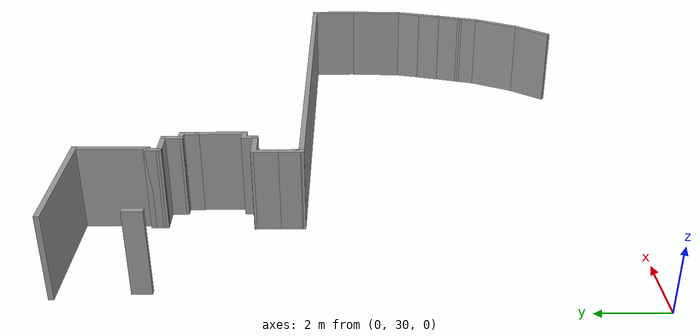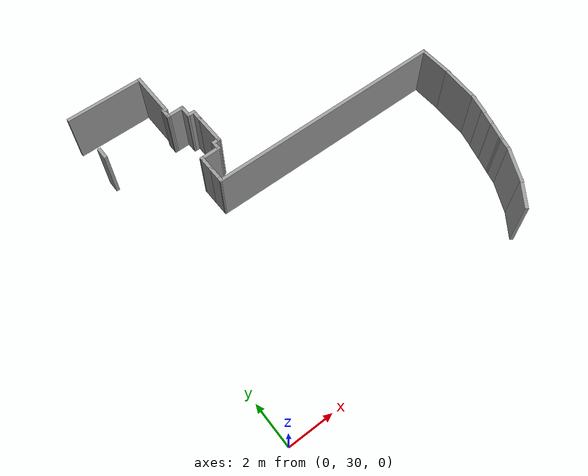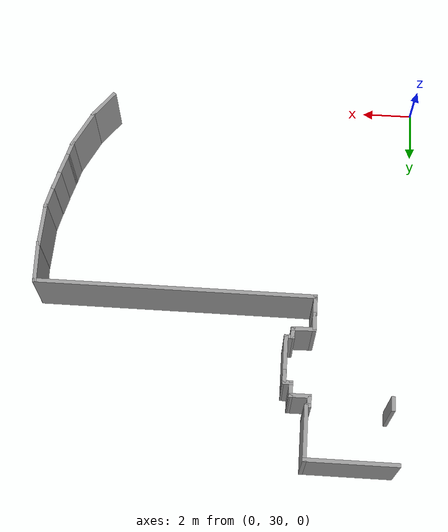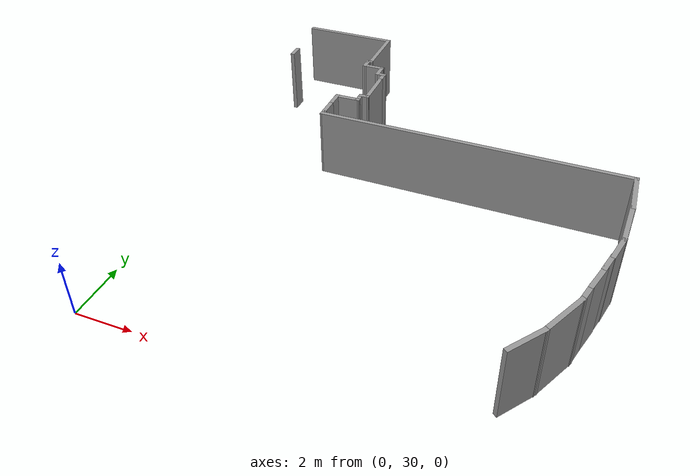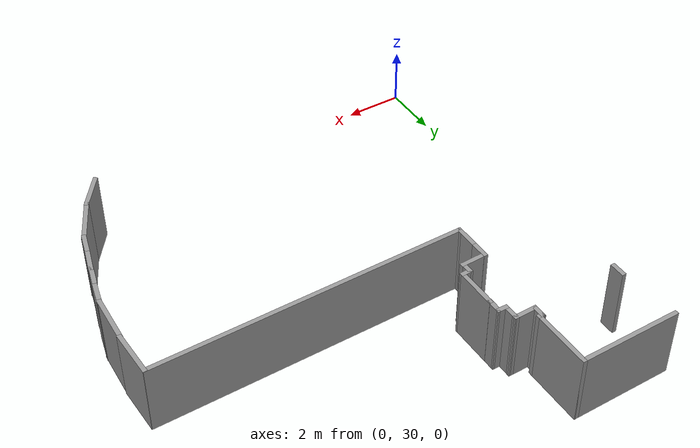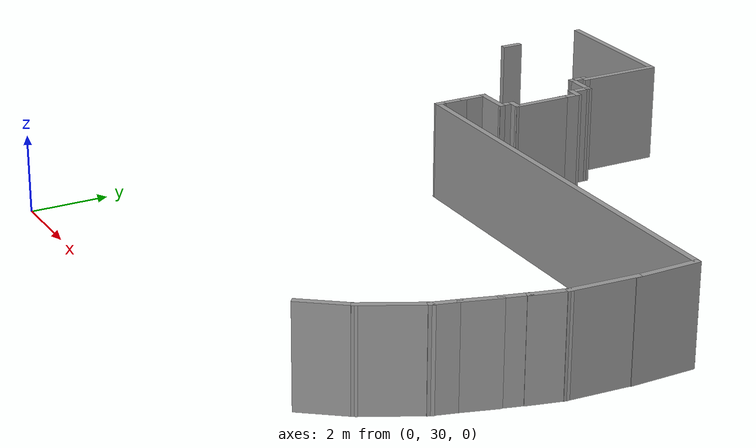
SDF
<sdf version="1.6">
 <model name="volen.world">
  <link name="Wall_100">
   <pose>12.7994 31.5829 0 0 0 -2.21664</pose>
   <visual name="Wall_100_Visual">
    <pose>0 0 1.25 0 -0 0</pose>
    <geometry><box><size>1.35577 0.15 2.5</size></box></geometry>
    <material>
     <script><uri>file://media/materials/scripts/gazebo.material</uri><name>Gazebo/Grey</name></script>
     <ambient>1 1 1 1</ambient>
     <diffuse>0.7 0.7 0.7 1</diffuse>
     <specular>0.01 0.01 0.01 1</specular>
     <emissive>0 0 0 1</emissive>
    </material>
   </visual>
   <collision name="Wall_100_Collision">
    <pose>0 0 1.25 0 -0 0</pose>
    <geometry><box><size>1.35577 0.15 2.5</size></box></geometry>
    <surface>
     <friction>
      <ode><mu>1</mu><mu2>1</mu2><fdir1>0 0 0</fdir1><slip1>0</slip1><slip2>0</slip2></ode>
      <torsional>
       <coefficient>1</coefficient>
       <patch_radius>0</patch_radius>
       <surface_radius>0</surface_radius>
       <use_patch_radius>1</use_patch_radius>
       <ode><slip>0</slip></ode>
      </torsional>
     </friction>
     <bounce><restitution_coefficient>0</restitution_coefficient><threshold>1e+06</threshold></bounce>
     <contact>
      <collide_without_contact>0</collide_without_contact>
      <collide_without_contact_bitmask>1</collide_without_contact_bitmask>
      <collide_bitmask>1</collide_bitmask>
      <ode>
       <soft_cfm>0</soft_cfm>
       <soft_erp>0.2</soft_erp>
       <kp>1e+13</kp>
       <kd>1</kd>
       <max_vel>0.01</max_vel>
       <min_depth>0</min_depth>
      </ode>
      <bullet>
       <split_impulse>1</split_impulse>
       <split_impulse_penetration_threshold>-0.01</split_impulse_penetration_threshold>
       <soft_cfm>0</soft_cfm>
       <soft_erp>0.2</soft_erp>
       <kp>1e+13</kp>
       <kd>1</kd>
      </bullet>
     </contact>
    </surface>
   </collision>
  </link>
  <link name="Wall_377">
   <pose>0.90923 43.3394 0 0 -0 1.5708</pose>
   <visual name="Wall_377_Visual">
    <pose>0 0 1.25 0 -0 0</pose>
    <geometry><box><size>0.55 0.15 2.5</size></box></geometry>
    <material>
     <script><uri>file://media/materials/scripts/gazebo.material</uri><name>Gazebo/Grey</name></script>
     <ambient>1 1 1 1</ambient>
     <diffuse>0.7 0.7 0.7 1</diffuse>
     <specular>0.01 0.01 0.01 1</specular>
     <emissive>0 0 0 1</emissive>
    </material>
   </visual>
   <collision name="Wall_377_Collision">
    <pose>0 0 1.25 0 -0 0</pose>
    <geometry><box><size>0.55 0.15 2.5</size></box></geometry>
    <surface>
     <friction>
      <ode><mu>1</mu><mu2>1</mu2><fdir1>0 0 0</fdir1><slip1>0</slip1><slip2>0</slip2></ode>
      <torsional>
       <coefficient>1</coefficient>
       <patch_radius>0</patch_radius>
       <surface_radius>0</surface_radius>
       <use_patch_radius>1</use_patch_radius>
       <ode><slip>0</slip></ode>
      </torsional>
     </friction>
     <bounce><restitution_coefficient>0</restitution_coefficient><threshold>1e+06</threshold></bounce>
     <contact>
      <collide_without_contact>0</collide_without_contact>
      <collide_without_contact_bitmask>1</collide_without_contact_bitmask>
      <collide_bitmask>1</collide_bitmask>
      <ode>
       <soft_cfm>0</soft_cfm>
       <soft_erp>0.2</soft_erp>
       <kp>1e+13</kp>
       <kd>1</kd>
       <max_vel>0.01</max_vel>
       <min_depth>0</min_depth>
      </ode>
      <bullet>
       <split_impulse>1</split_impulse>
       <split_impulse_penetration_threshold>-0.01</split_impulse_penetration_threshold>
       <soft_cfm>0</soft_cfm>
       <soft_erp>0.2</soft_erp>
       <kp>1e+13</kp>
       <kd>1</kd>
      </bullet>
     </contact>
    </surface>
   </collision>
  </link>
  <link name="Wall_387">
   <pose>14.6739 38.5776 0 0 0 -1.54557</pose>
   <visual name="Wall_387_Visual">
    <pose>0 0 1.25 0 -0 0</pose>
    <geometry><box><size>1.65654 0.15 2.5</size></box></geometry>
    <material>
     <script><uri>file://media/materials/scripts/gazebo.material</uri><name>Gazebo/Grey</name></script>
     <ambient>1 1 1 1</ambient>
     <diffuse>0.7 0.7 0.7 1</diffuse>
     <specular>0.01 0.01 0.01 1</specular>
     <emissive>0 0 0 1</emissive>
    </material>
   </visual>
   <collision name="Wall_387_Collision">
    <pose>0 0 1.25 0 -0 0</pose>
    <geometry><box><size>1.65654 0.15 2.5</size></box></geometry>
    <surface>
     <friction>
      <ode><mu>1</mu><mu2>1</mu2><fdir1>0 0 0</fdir1><slip1>0</slip1><slip2>0</slip2></ode>
      <torsional>
       <coefficient>1</coefficient>
       <patch_radius>0</patch_radius>
       <surface_radius>0</surface_radius>
       <use_patch_radius>1</use_patch_radius>
       <ode><slip>0</slip></ode>
      </torsional>
     </friction>
     <bounce><restitution_coefficient>0</restitution_coefficient><threshold>1e+06</threshold></bounce>
     <contact>
      <collide_without_contact>0</collide_without_contact>
      <collide_without_contact_bitmask>1</collide_without_contact_bitmask>
      <collide_bitmask>1</collide_bitmask>
      <ode>
       <soft_cfm>0</soft_cfm>
       <soft_erp>0.2</soft_erp>
       <kp>1e+13</kp>
       <kd>1</kd>
       <max_vel>0.01</max_vel>
       <min_depth>0</min_depth>
      </ode>
      <bullet>
       <split_impulse>1</split_impulse>
       <split_impulse_penetration_threshold>-0.01</split_impulse_penetration_threshold>
       <soft_cfm>0</soft_cfm>
       <soft_erp>0.2</soft_erp>
       <kp>1e+13</kp>
       <kd>1</kd>
      </bullet>
     </contact>
    </surface>
   </collision>
  </link>
  <link name="Wall_39">
   <pose>2.39544 45.5992 0 0 -0 0</pose>
   <visual name="Wall_39_Visual">
    <pose>0 0 1.25 0 -0 0</pose>
    <geometry><box><size>3.55 0.15 2.5</size></box></geometry>
    <material>
     <script><uri>file://media/materials/scripts/gazebo.material</uri><name>Gazebo/Grey</name></script>
     <ambient>1 1 1 1</ambient>
     <diffuse>0.7 0.7 0.7 1</diffuse>
     <specular>0.01 0.01 0.01 1</specular>
     <emissive>0 0 0 1</emissive>
    </material>
   </visual>
   <collision name="Wall_39_Collision">
    <pose>0 0 1.25 0 -0 0</pose>
    <geometry><box><size>3.55 0.15 2.5</size></box></geometry>
    <surface>
     <friction>
      <ode><mu>1</mu><mu2>1</mu2><fdir1>0 0 0</fdir1><slip1>0</slip1><slip2>0</slip2></ode>
      <torsional>
       <coefficient>1</coefficient>
       <patch_radius>0</patch_radius>
       <surface_radius>0</surface_radius>
       <use_patch_radius>1</use_patch_radius>
       <ode><slip>0</slip></ode>
      </torsional>
     </friction>
     <bounce><restitution_coefficient>0</restitution_coefficient><threshold>1e+06</threshold></bounce>
     <contact>
      <collide_without_contact>0</collide_without_contact>
      <collide_without_contact_bitmask>1</collide_without_contact_bitmask>
      <collide_bitmask>1</collide_bitmask>
      <ode>
       <soft_cfm>0</soft_cfm>
       <soft_erp>0.2</soft_erp>
       <kp>1e+13</kp>
       <kd>1</kd>
       <max_vel>0.01</max_vel>
       <min_depth>0</min_depth>
      </ode>
      <bullet>
       <split_impulse>1</split_impulse>
       <split_impulse_penetration_threshold>-0.01</split_impulse_penetration_threshold>
       <soft_cfm>0</soft_cfm>
       <soft_erp>0.2</soft_erp>
       <kp>1e+13</kp>
       <kd>1</kd>
      </bullet>
     </contact>
    </surface>
   </collision>
  </link>
  <link name="Wall_41">
   <pose>4.09544 44.5982 0 0 0 -1.5708</pose>
   <visual name="Wall_41_Visual">
    <pose>0 0 1.25 0 -0 0</pose>
    <geometry><box><size>2.152 0.15 2.5</size></box></geometry>
    <material>
     <script><uri>file://media/materials/scripts/gazebo.material</uri><name>Gazebo/Grey</name></script>
     <ambient>1 1 1 1</ambient>
     <diffuse>0.7 0.7 0.7 1</diffuse>
     <specular>0.01 0.01 0.01 1</specular>
     <emissive>0 0 0 1</emissive>
    </material>
   </visual>
   <collision name="Wall_41_Collision">
    <pose>0 0 1.25 0 -0 0</pose>
    <geometry><box><size>2.152 0.15 2.5</size></box></geometry>
    <surface>
     <friction>
      <ode><mu>1</mu><mu2>1</mu2><fdir1>0 0 0</fdir1><slip1>0</slip1><slip2>0</slip2></ode>
      <torsional>
       <coefficient>1</coefficient>
       <patch_radius>0</patch_radius>
       <surface_radius>0</surface_radius>
       <use_patch_radius>1</use_patch_radius>
       <ode><slip>0</slip></ode>
      </torsional>
     </friction>
     <bounce><restitution_coefficient>0</restitution_coefficient><threshold>1e+06</threshold></bounce>
     <contact>
      <collide_without_contact>0</collide_without_contact>
      <collide_without_contact_bitmask>1</collide_without_contact_bitmask>
      <collide_bitmask>1</collide_bitmask>
      <ode>
       <soft_cfm>0</soft_cfm>
       <soft_erp>0.2</soft_erp>
       <kp>1e+13</kp>
       <kd>1</kd>
       <max_vel>0.01</max_vel>
       <min_depth>0</min_depth>
      </ode>
      <bullet>
       <split_impulse>1</split_impulse>
       <split_impulse_penetration_threshold>-0.01</split_impulse_penetration_threshold>
       <soft_cfm>0</soft_cfm>
       <soft_erp>0.2</soft_erp>
       <kp>1e+13</kp>
       <kd>1</kd>
      </bullet>
     </contact>
    </surface>
   </collision>
  </link>
  <link name="Wall_48">
   <pose>4.04544 43.5972 0 0 -0 3.14159</pose>
   <visual name="Wall_48_Visual">
    <pose>0 0 1.25 0 -0 0</pose>
    <geometry><box><size>0.25 0.15 2.5</size></box></geometry>
    <material>
     <script><uri>file://media/materials/scripts/gazebo.material</uri><name>Gazebo/Grey</name></script>
     <ambient>1 1 1 1</ambient>
     <diffuse>0.7 0.7 0.7 1</diffuse>
     <specular>0.01 0.01 0.01 1</specular>
     <emissive>0 0 0 1</emissive>
    </material>
   </visual>
   <collision name="Wall_48_Collision">
    <pose>0 0 1.25 0 -0 0</pose>
    <geometry><box><size>0.25 0.15 2.5</size></box></geometry>
    <surface>
     <friction>
      <ode><mu>1</mu><mu2>1</mu2><fdir1>0 0 0</fdir1><slip1>0</slip1><slip2>0</slip2></ode>
      <torsional>
       <coefficient>1</coefficient>
       <patch_radius>0</patch_radius>
       <surface_radius>0</surface_radius>
       <use_patch_radius>1</use_patch_radius>
       <ode><slip>0</slip></ode>
      </torsional>
     </friction>
     <bounce><restitution_coefficient>0</restitution_coefficient><threshold>1e+06</threshold></bounce>
     <contact>
      <collide_without_contact>0</collide_without_contact>
      <collide_without_contact_bitmask>1</collide_without_contact_bitmask>
      <collide_bitmask>1</collide_bitmask>
      <ode>
       <soft_cfm>0</soft_cfm>
       <soft_erp>0.2</soft_erp>
       <kp>1e+13</kp>
       <kd>1</kd>
       <max_vel>0.01</max_vel>
       <min_depth>0</min_depth>
      </ode>
      <bullet>
       <split_impulse>1</split_impulse>
       <split_impulse_penetration_threshold>-0.01</split_impulse_penetration_threshold>
       <soft_cfm>0</soft_cfm>
       <soft_erp>0.2</soft_erp>
       <kp>1e+13</kp>
       <kd>1</kd>
      </bullet>
     </contact>
    </surface>
   </collision>
  </link>
  <link name="Wall_49">
   <pose>3.99544 43.4222 0 0 0 -1.5708</pose>
   <visual name="Wall_49_Visual">
    <pose>0 0 1.25 0 -0 0</pose>
    <geometry><box><size>0.5 0.15 2.5</size></box></geometry>
    <material>
     <script><uri>file://media/materials/scripts/gazebo.material</uri><name>Gazebo/Grey</name></script>
     <ambient>1 1 1 1</ambient>
     <diffuse>0.7 0.7 0.7 1</diffuse>
     <specular>0.01 0.01 0.01 1</specular>
     <emissive>0 0 0 1</emissive>
    </material>
   </visual>
   <collision name="Wall_49_Collision">
    <pose>0 0 1.25 0 -0 0</pose>
    <geometry><box><size>0.5 0.15 2.5</size></box></geometry>
    <surface>
     <friction>
      <ode><mu>1</mu><mu2>1</mu2><fdir1>0 0 0</fdir1><slip1>0</slip1><slip2>0</slip2></ode>
      <torsional>
       <coefficient>1</coefficient>
       <patch_radius>0</patch_radius>
       <surface_radius>0</surface_radius>
       <use_patch_radius>1</use_patch_radius>
       <ode><slip>0</slip></ode>
      </torsional>
     </friction>
     <bounce><restitution_coefficient>0</restitution_coefficient><threshold>1e+06</threshold></bounce>
     <contact>
      <collide_without_contact>0</collide_without_contact>
      <collide_without_contact_bitmask>1</collide_without_contact_bitmask>
      <collide_bitmask>1</collide_bitmask>
      <ode>
       <soft_cfm>0</soft_cfm>
       <soft_erp>0.2</soft_erp>
       <kp>1e+13</kp>
       <kd>1</kd>
       <max_vel>0.01</max_vel>
       <min_depth>0</min_depth>
      </ode>
      <bullet>
       <split_impulse>1</split_impulse>
       <split_impulse_penetration_threshold>-0.01</split_impulse_penetration_threshold>
       <soft_cfm>0</soft_cfm>
       <soft_erp>0.2</soft_erp>
       <kp>1e+13</kp>
       <kd>1</kd>
      </bullet>
     </contact>
    </surface>
   </collision>
  </link>
  <link name="Wall_50">
   <pose>4.34484 43.2498 0 0 -0 0.00739</pose>
   <visual name="Wall_50_Visual">
    <pose>0 0 1.25 0 -0 0</pose>
    <geometry><box><size>0.848806 0.15 2.5</size></box></geometry>
    <material>
     <script><uri>file://media/materials/scripts/gazebo.material</uri><name>Gazebo/Grey</name></script>
     <ambient>1 1 1 1</ambient>
     <diffuse>0.7 0.7 0.7 1</diffuse>
     <specular>0.01 0.01 0.01 1</specular>
     <emissive>0 0 0 1</emissive>
    </material>
   </visual>
   <collision name="Wall_50_Collision">
    <pose>0 0 1.25 0 -0 0</pose>
    <geometry><box><size>0.848806 0.15 2.5</size></box></geometry>
    <surface>
     <friction>
      <ode><mu>1</mu><mu2>1</mu2><fdir1>0 0 0</fdir1><slip1>0</slip1><slip2>0</slip2></ode>
      <torsional>
       <coefficient>1</coefficient>
       <patch_radius>0</patch_radius>
       <surface_radius>0</surface_radius>
       <use_patch_radius>1</use_patch_radius>
       <ode><slip>0</slip></ode>
      </torsional>
     </friction>
     <bounce><restitution_coefficient>0</restitution_coefficient><threshold>1e+06</threshold></bounce>
     <contact>
      <collide_without_contact>0</collide_without_contact>
      <collide_without_contact_bitmask>1</collide_without_contact_bitmask>
      <collide_bitmask>1</collide_bitmask>
      <ode>
       <soft_cfm>0</soft_cfm>
       <soft_erp>0.2</soft_erp>
       <kp>1e+13</kp>
       <kd>1</kd>
       <max_vel>0.01</max_vel>
       <min_depth>0</min_depth>
      </ode>
      <bullet>
       <split_impulse>1</split_impulse>
       <split_impulse_penetration_threshold>-0.01</split_impulse_penetration_threshold>
       <soft_cfm>0</soft_cfm>
       <soft_erp>0.2</soft_erp>
       <kp>1e+13</kp>
       <kd>1</kd>
      </bullet>
     </contact>
    </surface>
   </collision>
  </link>
  <link name="Wall_68">
   <pose>4.69423 43.0154 0 0 0 -1.5708</pose>
   <visual name="Wall_68_Visual">
    <pose>0 0 1.25 0 -0 0</pose>
    <geometry><box><size>0.624347 0.15 2.5</size></box></geometry>
    <material>
     <script><uri>file://media/materials/scripts/gazebo.material</uri><name>Gazebo/Grey</name></script>
     <ambient>1 1 1 1</ambient>
     <diffuse>0.7 0.7 0.7 1</diffuse>
     <specular>0.01 0.01 0.01 1</specular>
     <emissive>0 0 0 1</emissive>
    </material>
   </visual>
   <collision name="Wall_68_Collision">
    <pose>0 0 1.25 0 -0 0</pose>
    <geometry><box><size>0.624347 0.15 2.5</size></box></geometry>
    <surface>
     <friction>
      <ode><mu>1</mu><mu2>1</mu2><fdir1>0 0 0</fdir1><slip1>0</slip1><slip2>0</slip2></ode>
      <torsional>
       <coefficient>1</coefficient>
       <patch_radius>0</patch_radius>
       <surface_radius>0</surface_radius>
       <use_patch_radius>1</use_patch_radius>
       <ode><slip>0</slip></ode>
      </torsional>
     </friction>
     <bounce><restitution_coefficient>0</restitution_coefficient><threshold>1e+06</threshold></bounce>
     <contact>
      <collide_without_contact>0</collide_without_contact>
      <collide_without_contact_bitmask>1</collide_without_contact_bitmask>
      <collide_bitmask>1</collide_bitmask>
      <ode>
       <soft_cfm>0</soft_cfm>
       <soft_erp>0.2</soft_erp>
       <kp>1e+13</kp>
       <kd>1</kd>
       <max_vel>0.01</max_vel>
       <min_depth>0</min_depth>
      </ode>
      <bullet>
       <split_impulse>1</split_impulse>
       <split_impulse_penetration_threshold>-0.01</split_impulse_penetration_threshold>
       <soft_cfm>0</soft_cfm>
       <soft_erp>0.2</soft_erp>
       <kp>1e+13</kp>
       <kd>1</kd>
      </bullet>
     </contact>
    </surface>
   </collision>
  </link>
  <link name="Wall_69">
   <pose>4.82273 42.7754 0 0 0 -0.023342</pose>
   <visual name="Wall_69_Visual">
    <pose>0 0 1.25 0 -0 0</pose>
    <geometry><box><size>0.40707 0.15 2.5</size></box></geometry>
    <material>
     <script><uri>file://media/materials/scripts/gazebo.material</uri><name>Gazebo/Grey</name></script>
     <ambient>1 1 1 1</ambient>
     <diffuse>0.7 0.7 0.7 1</diffuse>
     <specular>0.01 0.01 0.01 1</specular>
     <emissive>0 0 0 1</emissive>
    </material>
   </visual>
   <collision name="Wall_69_Collision">
    <pose>0 0 1.25 0 -0 0</pose>
    <geometry><box><size>0.40707 0.15 2.5</size></box></geometry>
    <surface>
     <friction>
      <ode><mu>1</mu><mu2>1</mu2><fdir1>0 0 0</fdir1><slip1>0</slip1><slip2>0</slip2></ode>
      <torsional>
       <coefficient>1</coefficient>
       <patch_radius>0</patch_radius>
       <surface_radius>0</surface_radius>
       <use_patch_radius>1</use_patch_radius>
       <ode><slip>0</slip></ode>
      </torsional>
     </friction>
     <bounce><restitution_coefficient>0</restitution_coefficient><threshold>1e+06</threshold></bounce>
     <contact>
      <collide_without_contact>0</collide_without_contact>
      <collide_without_contact_bitmask>1</collide_without_contact_bitmask>
      <collide_bitmask>1</collide_bitmask>
      <ode>
       <soft_cfm>0</soft_cfm>
       <soft_erp>0.2</soft_erp>
       <kp>1e+13</kp>
       <kd>1</kd>
       <max_vel>0.01</max_vel>
       <min_depth>0</min_depth>
      </ode>
      <bullet>
       <split_impulse>1</split_impulse>
       <split_impulse_penetration_threshold>-0.01</split_impulse_penetration_threshold>
       <soft_cfm>0</soft_cfm>
       <soft_erp>0.2</soft_erp>
       <kp>1e+13</kp>
       <kd>1</kd>
      </bullet>
     </contact>
    </surface>
   </collision>
  </link>
  <link name="Wall_70">
   <pose>4.94834 42.563 0 0 0 -1.58462</pose>
   <visual name="Wall_70_Visual">
    <pose>0 0 1.25 0 -0 0</pose>
    <geometry><box><size>0.568673 0.15 2.5</size></box></geometry>
    <material>
     <script><uri>file://media/materials/scripts/gazebo.material</uri><name>Gazebo/Grey</name></script>
     <ambient>1 1 1 1</ambient>
     <diffuse>0.7 0.7 0.7 1</diffuse>
     <specular>0.01 0.01 0.01 1</specular>
     <emissive>0 0 0 1</emissive>
    </material>
   </visual>
   <collision name="Wall_70_Collision">
    <pose>0 0 1.25 0 -0 0</pose>
    <geometry><box><size>0.568673 0.15 2.5</size></box></geometry>
    <surface>
     <friction>
      <ode><mu>1</mu><mu2>1</mu2><fdir1>0 0 0</fdir1><slip1>0</slip1><slip2>0</slip2></ode>
      <torsional>
       <coefficient>1</coefficient>
       <patch_radius>0</patch_radius>
       <surface_radius>0</surface_radius>
       <use_patch_radius>1</use_patch_radius>
       <ode><slip>0</slip></ode>
      </torsional>
     </friction>
     <bounce><restitution_coefficient>0</restitution_coefficient><threshold>1e+06</threshold></bounce>
     <contact>
      <collide_without_contact>0</collide_without_contact>
      <collide_without_contact_bitmask>1</collide_without_contact_bitmask>
      <collide_bitmask>1</collide_bitmask>
      <ode>
       <soft_cfm>0</soft_cfm>
       <soft_erp>0.2</soft_erp>
       <kp>1e+13</kp>
       <kd>1</kd>
       <max_vel>0.01</max_vel>
       <min_depth>0</min_depth>
      </ode>
      <bullet>
       <split_impulse>1</split_impulse>
       <split_impulse_penetration_threshold>-0.01</split_impulse_penetration_threshold>
       <soft_cfm>0</soft_cfm>
       <soft_erp>0.2</soft_erp>
       <kp>1e+13</kp>
       <kd>1</kd>
      </bullet>
     </contact>
    </surface>
   </collision>
  </link>
  <link name="Wall_72">
   <pose>4.95392 41.6787 0 0 0 -1.56661</pose>
   <visual name="Wall_72_Visual">
    <pose>0 0 1.25 0 -0 0</pose>
    <geometry><box><size>1.50005 0.15 2.5</size></box></geometry>
    <material>
     <script><uri>file://media/materials/scripts/gazebo.material</uri><name>Gazebo/Grey</name></script>
     <ambient>1 1 1 1</ambient>
     <diffuse>0.7 0.7 0.7 1</diffuse>
     <specular>0.01 0.01 0.01 1</specular>
     <emissive>0 0 0 1</emissive>
    </material>
   </visual>
   <collision name="Wall_72_Collision">
    <pose>0 0 1.25 0 -0 0</pose>
    <geometry><box><size>1.50005 0.15 2.5</size></box></geometry>
    <surface>
     <friction>
      <ode><mu>1</mu><mu2>1</mu2><fdir1>0 0 0</fdir1><slip1>0</slip1><slip2>0</slip2></ode>
      <torsional>
       <coefficient>1</coefficient>
       <patch_radius>0</patch_radius>
       <surface_radius>0</surface_radius>
       <use_patch_radius>1</use_patch_radius>
       <ode><slip>0</slip></ode>
      </torsional>
     </friction>
     <bounce><restitution_coefficient>0</restitution_coefficient><threshold>1e+06</threshold></bounce>
     <contact>
      <collide_without_contact>0</collide_without_contact>
      <collide_without_contact_bitmask>1</collide_without_contact_bitmask>
      <collide_bitmask>1</collide_bitmask>
      <ode>
       <soft_cfm>0</soft_cfm>
       <soft_erp>0.2</soft_erp>
       <kp>1e+13</kp>
       <kd>1</kd>
       <max_vel>0.01</max_vel>
       <min_depth>0</min_depth>
      </ode>
      <bullet>
       <split_impulse>1</split_impulse>
       <split_impulse_penetration_threshold>-0.01</split_impulse_penetration_threshold>
       <soft_cfm>0</soft_cfm>
       <soft_erp>0.2</soft_erp>
       <kp>1e+13</kp>
       <kd>1</kd>
      </bullet>
     </contact>
    </surface>
   </collision>
  </link>
  <link name="Wall_76">
   <pose>4.83526 41.0008 0 0 0 -3.11775</pose>
   <visual name="Wall_76_Visual">
    <pose>0 0 1.25 0 -0 0</pose>
    <geometry><box><size>0.393057 0.15 2.5</size></box></geometry>
    <material>
     <script><uri>file://media/materials/scripts/gazebo.material</uri><name>Gazebo/Grey</name></script>
     <ambient>1 1 1 1</ambient>
     <diffuse>0.7 0.7 0.7 1</diffuse>
     <specular>0.01 0.01 0.01 1</specular>
     <emissive>0 0 0 1</emissive>
    </material>
   </visual>
   <collision name="Wall_76_Collision">
    <pose>0 0 1.25 0 -0 0</pose>
    <geometry><box><size>0.393057 0.15 2.5</size></box></geometry>
    <surface>
     <friction>
      <ode><mu>1</mu><mu2>1</mu2><fdir1>0 0 0</fdir1><slip1>0</slip1><slip2>0</slip2></ode>
      <torsional>
       <coefficient>1</coefficient>
       <patch_radius>0</patch_radius>
       <surface_radius>0</surface_radius>
       <use_patch_radius>1</use_patch_radius>
       <ode><slip>0</slip></ode>
      </torsional>
     </friction>
     <bounce><restitution_coefficient>0</restitution_coefficient><threshold>1e+06</threshold></bounce>
     <contact>
      <collide_without_contact>0</collide_without_contact>
      <collide_without_contact_bitmask>1</collide_without_contact_bitmask>
      <collide_bitmask>1</collide_bitmask>
      <ode>
       <soft_cfm>0</soft_cfm>
       <soft_erp>0.2</soft_erp>
       <kp>1e+13</kp>
       <kd>1</kd>
       <max_vel>0.01</max_vel>
       <min_depth>0</min_depth>
      </ode>
      <bullet>
       <split_impulse>1</split_impulse>
       <split_impulse_penetration_threshold>-0.01</split_impulse_penetration_threshold>
       <soft_cfm>0</soft_cfm>
       <soft_erp>0.2</soft_erp>
       <kp>1e+13</kp>
       <kd>1</kd>
      </bullet>
     </contact>
    </surface>
   </collision>
  </link>
  <link name="Wall_77">
   <pose>4.70811 40.8369 0 0 0 -1.5708</pose>
   <visual name="Wall_77_Visual">
    <pose>0 0 1.25 0 -0 0</pose>
    <geometry><box><size>0.472 0.15 2.5</size></box></geometry>
    <material>
     <script><uri>file://media/materials/scripts/gazebo.material</uri><name>Gazebo/Grey</name></script>
     <ambient>1 1 1 1</ambient>
     <diffuse>0.7 0.7 0.7 1</diffuse>
     <specular>0.01 0.01 0.01 1</specular>
     <emissive>0 0 0 1</emissive>
    </material>
   </visual>
   <collision name="Wall_77_Collision">
    <pose>0 0 1.25 0 -0 0</pose>
    <geometry><box><size>0.472 0.15 2.5</size></box></geometry>
    <surface>
     <friction>
      <ode><mu>1</mu><mu2>1</mu2><fdir1>0 0 0</fdir1><slip1>0</slip1><slip2>0</slip2></ode>
      <torsional>
       <coefficient>1</coefficient>
       <patch_radius>0</patch_radius>
       <surface_radius>0</surface_radius>
       <use_patch_radius>1</use_patch_radius>
       <ode><slip>0</slip></ode>
      </torsional>
     </friction>
     <bounce><restitution_coefficient>0</restitution_coefficient><threshold>1e+06</threshold></bounce>
     <contact>
      <collide_without_contact>0</collide_without_contact>
      <collide_without_contact_bitmask>1</collide_without_contact_bitmask>
      <collide_bitmask>1</collide_bitmask>
      <ode>
       <soft_cfm>0</soft_cfm>
       <soft_erp>0.2</soft_erp>
       <kp>1e+13</kp>
       <kd>1</kd>
       <max_vel>0.01</max_vel>
       <min_depth>0</min_depth>
      </ode>
      <bullet>
       <split_impulse>1</split_impulse>
       <split_impulse_penetration_threshold>-0.01</split_impulse_penetration_threshold>
       <soft_cfm>0</soft_cfm>
       <soft_erp>0.2</soft_erp>
       <kp>1e+13</kp>
       <kd>1</kd>
      </bullet>
     </contact>
    </surface>
   </collision>
  </link>
  <link name="Wall_78">
   <pose>4.3105 40.6675 0 0 0 -3.12062</pose>
   <visual name="Wall_78_Visual">
    <pose>0 0 1.25 0 -0 0</pose>
    <geometry><box><size>0.956709 0.15 2.5</size></box></geometry>
    <material>
     <script><uri>file://media/materials/scripts/gazebo.material</uri><name>Gazebo/Grey</name></script>
     <ambient>1 1 1 1</ambient>
     <diffuse>0.7 0.7 0.7 1</diffuse>
     <specular>0.01 0.01 0.01 1</specular>
     <emissive>0 0 0 1</emissive>
    </material>
   </visual>
   <collision name="Wall_78_Collision">
    <pose>0 0 1.25 0 -0 0</pose>
    <geometry><box><size>0.956709 0.15 2.5</size></box></geometry>
    <surface>
     <friction>
      <ode><mu>1</mu><mu2>1</mu2><fdir1>0 0 0</fdir1><slip1>0</slip1><slip2>0</slip2></ode>
      <torsional>
       <coefficient>1</coefficient>
       <patch_radius>0</patch_radius>
       <surface_radius>0</surface_radius>
       <use_patch_radius>1</use_patch_radius>
       <ode><slip>0</slip></ode>
      </torsional>
     </friction>
     <bounce><restitution_coefficient>0</restitution_coefficient><threshold>1e+06</threshold></bounce>
     <contact>
      <collide_without_contact>0</collide_without_contact>
      <collide_without_contact_bitmask>1</collide_without_contact_bitmask>
      <collide_bitmask>1</collide_bitmask>
      <ode>
       <soft_cfm>0</soft_cfm>
       <soft_erp>0.2</soft_erp>
       <kp>1e+13</kp>
       <kd>1</kd>
       <max_vel>0.01</max_vel>
       <min_depth>0</min_depth>
      </ode>
      <bullet>
       <split_impulse>1</split_impulse>
       <split_impulse_penetration_threshold>-0.01</split_impulse_penetration_threshold>
       <soft_cfm>0</soft_cfm>
       <soft_erp>0.2</soft_erp>
       <kp>1e+13</kp>
       <kd>1</kd>
      </bullet>
     </contact>
    </surface>
   </collision>
  </link>
  <link name="Wall_80">
   <pose>3.90723 40.359 0 0 0 -1.5708</pose>
   <visual name="Wall_80_Visual">
    <pose>0 0 1.25 0 -0 0</pose>
    <geometry><box><size>0.761306 0.15 2.5</size></box></geometry>
    <material>
     <script><uri>file://media/materials/scripts/gazebo.material</uri><name>Gazebo/Grey</name></script>
     <ambient>1 1 1 1</ambient>
     <diffuse>0.7 0.7 0.7 1</diffuse>
     <specular>0.01 0.01 0.01 1</specular>
     <emissive>0 0 0 1</emissive>
    </material>
   </visual>
   <collision name="Wall_80_Collision">
    <pose>0 0 1.25 0 -0 0</pose>
    <geometry><box><size>0.761306 0.15 2.5</size></box></geometry>
    <surface>
     <friction>
      <ode><mu>1</mu><mu2>1</mu2><fdir1>0 0 0</fdir1><slip1>0</slip1><slip2>0</slip2></ode>
      <torsional>
       <coefficient>1</coefficient>
       <patch_radius>0</patch_radius>
       <surface_radius>0</surface_radius>
       <use_patch_radius>1</use_patch_radius>
       <ode><slip>0</slip></ode>
      </torsional>
     </friction>
     <bounce><restitution_coefficient>0</restitution_coefficient><threshold>1e+06</threshold></bounce>
     <contact>
      <collide_without_contact>0</collide_without_contact>
      <collide_without_contact_bitmask>1</collide_without_contact_bitmask>
      <collide_bitmask>1</collide_bitmask>
      <ode>
       <soft_cfm>0</soft_cfm>
       <soft_erp>0.2</soft_erp>
       <kp>1e+13</kp>
       <kd>1</kd>
       <max_vel>0.01</max_vel>
       <min_depth>0</min_depth>
      </ode>
      <bullet>
       <split_impulse>1</split_impulse>
       <split_impulse_penetration_threshold>-0.01</split_impulse_penetration_threshold>
       <soft_cfm>0</soft_cfm>
       <soft_erp>0.2</soft_erp>
       <kp>1e+13</kp>
       <kd>1</kd>
      </bullet>
     </contact>
    </surface>
   </collision>
  </link>
  <link name="Wall_82">
   <pose>3.90723 39.7534 0 0 0 -1.5708</pose>
   <visual name="Wall_82_Visual">
    <pose>0 0 1.25 0 -0 0</pose>
    <geometry><box><size>0.75 0.15 2.5</size></box></geometry>
    <material>
     <script><uri>file://media/materials/scripts/gazebo.material</uri><name>Gazebo/Grey</name></script>
     <ambient>1 1 1 1</ambient>
     <diffuse>0.7 0.7 0.7 1</diffuse>
     <specular>0.01 0.01 0.01 1</specular>
     <emissive>0 0 0 1</emissive>
    </material>
   </visual>
   <collision name="Wall_82_Collision">
    <pose>0 0 1.25 0 -0 0</pose>
    <geometry><box><size>0.75 0.15 2.5</size></box></geometry>
    <surface>
     <friction>
      <ode><mu>1</mu><mu2>1</mu2><fdir1>0 0 0</fdir1><slip1>0</slip1><slip2>0</slip2></ode>
      <torsional>
       <coefficient>1</coefficient>
       <patch_radius>0</patch_radius>
       <surface_radius>0</surface_radius>
       <use_patch_radius>1</use_patch_radius>
       <ode><slip>0</slip></ode>
      </torsional>
     </friction>
     <bounce><restitution_coefficient>0</restitution_coefficient><threshold>1e+06</threshold></bounce>
     <contact>
      <collide_without_contact>0</collide_without_contact>
      <collide_without_contact_bitmask>1</collide_without_contact_bitmask>
      <collide_bitmask>1</collide_bitmask>
      <ode>
       <soft_cfm>0</soft_cfm>
       <soft_erp>0.2</soft_erp>
       <kp>1e+13</kp>
       <kd>1</kd>
       <max_vel>0.01</max_vel>
       <min_depth>0</min_depth>
      </ode>
      <bullet>
       <split_impulse>1</split_impulse>
       <split_impulse_penetration_threshold>-0.01</split_impulse_penetration_threshold>
       <soft_cfm>0</soft_cfm>
       <soft_erp>0.2</soft_erp>
       <kp>1e+13</kp>
       <kd>1</kd>
      </bullet>
     </contact>
    </surface>
   </collision>
  </link>
  <link name="Wall_83">
   <pose>3.90723 39.4034 0 0 0 -1.5708</pose>
   <visual name="Wall_83_Visual">
    <pose>0 0 1.25 0 -0 0</pose>
    <geometry><box><size>0.25 0.15 2.5</size></box></geometry>
    <material>
     <script><uri>file://media/materials/scripts/gazebo.material</uri><name>Gazebo/Grey</name></script>
     <ambient>1 1 1 1</ambient>
     <diffuse>0.7 0.7 0.7 1</diffuse>
     <specular>0.01 0.01 0.01 1</specular>
     <emissive>0 0 0 1</emissive>
    </material>
   </visual>
   <collision name="Wall_83_Collision">
    <pose>0 0 1.25 0 -0 0</pose>
    <geometry><box><size>0.25 0.15 2.5</size></box></geometry>
    <surface>
     <friction>
      <ode><mu>1</mu><mu2>1</mu2><fdir1>0 0 0</fdir1><slip1>0</slip1><slip2>0</slip2></ode>
      <torsional>
       <coefficient>1</coefficient>
       <patch_radius>0</patch_radius>
       <surface_radius>0</surface_radius>
       <use_patch_radius>1</use_patch_radius>
       <ode><slip>0</slip></ode>
      </torsional>
     </friction>
     <bounce><restitution_coefficient>0</restitution_coefficient><threshold>1e+06</threshold></bounce>
     <contact>
      <collide_without_contact>0</collide_without_contact>
      <collide_without_contact_bitmask>1</collide_without_contact_bitmask>
      <collide_bitmask>1</collide_bitmask>
      <ode>
       <soft_cfm>0</soft_cfm>
       <soft_erp>0.2</soft_erp>
       <kp>1e+13</kp>
       <kd>1</kd>
       <max_vel>0.01</max_vel>
       <min_depth>0</min_depth>
      </ode>
      <bullet>
       <split_impulse>1</split_impulse>
       <split_impulse_penetration_threshold>-0.01</split_impulse_penetration_threshold>
       <soft_cfm>0</soft_cfm>
       <soft_erp>0.2</soft_erp>
       <kp>1e+13</kp>
       <kd>1</kd>
      </bullet>
     </contact>
    </surface>
   </collision>
  </link>
  <link name="Wall_84">
   <pose>9.27538 39.3477 0 0 0 -0.001059</pose>
   <visual name="Wall_84_Visual">
    <pose>0 0 1.25 0 -0 0</pose>
    <geometry><box><size>10.8863 0.15 2.5</size></box></geometry>
    <material>
     <script><uri>file://media/materials/scripts/gazebo.material</uri><name>Gazebo/Grey</name></script>
     <ambient>1 1 1 1</ambient>
     <diffuse>0.7 0.7 0.7 1</diffuse>
     <specular>0.01 0.01 0.01 1</specular>
     <emissive>0 0 0 1</emissive>
    </material>
   </visual>
   <collision name="Wall_84_Collision">
    <pose>0 0 1.25 0 -0 0</pose>
    <geometry><box><size>10.8863 0.15 2.5</size></box></geometry>
    <surface>
     <friction>
      <ode><mu>1</mu><mu2>1</mu2><fdir1>0 0 0</fdir1><slip1>0</slip1><slip2>0</slip2></ode>
      <torsional>
       <coefficient>1</coefficient>
       <patch_radius>0</patch_radius>
       <surface_radius>0</surface_radius>
       <use_patch_radius>1</use_patch_radius>
       <ode><slip>0</slip></ode>
      </torsional>
     </friction>
     <bounce><restitution_coefficient>0</restitution_coefficient><threshold>1e+06</threshold></bounce>
     <contact>
      <collide_without_contact>0</collide_without_contact>
      <collide_without_contact_bitmask>1</collide_without_contact_bitmask>
      <collide_bitmask>1</collide_bitmask>
      <ode>
       <soft_cfm>0</soft_cfm>
       <soft_erp>0.2</soft_erp>
       <kp>1e+13</kp>
       <kd>1</kd>
       <max_vel>0.01</max_vel>
       <min_depth>0</min_depth>
      </ode>
      <bullet>
       <split_impulse>1</split_impulse>
       <split_impulse_penetration_threshold>-0.01</split_impulse_penetration_threshold>
       <soft_cfm>0</soft_cfm>
       <soft_erp>0.2</soft_erp>
       <kp>1e+13</kp>
       <kd>1</kd>
      </bullet>
     </contact>
    </surface>
   </collision>
  </link>
  <link name="Wall_89">
   <pose>14.6417 37.0299 0 0 0 -1.62013</pose>
   <visual name="Wall_89_Visual">
    <pose>0 0 1.25 0 -0 0</pose>
    <geometry><box><size>1.76409 0.15 2.5</size></box></geometry>
    <material>
     <script><uri>file://media/materials/scripts/gazebo.material</uri><name>Gazebo/Grey</name></script>
     <ambient>1 1 1 1</ambient>
     <diffuse>0.7 0.7 0.7 1</diffuse>
     <specular>0.01 0.01 0.01 1</specular>
     <emissive>0 0 0 1</emissive>
    </material>
   </visual>
   <collision name="Wall_89_Collision">
    <pose>0 0 1.25 0 -0 0</pose>
    <geometry><box><size>1.76409 0.15 2.5</size></box></geometry>
    <surface>
     <friction>
      <ode><mu>1</mu><mu2>1</mu2><fdir1>0 0 0</fdir1><slip1>0</slip1><slip2>0</slip2></ode>
      <torsional>
       <coefficient>1</coefficient>
       <patch_radius>0</patch_radius>
       <surface_radius>0</surface_radius>
       <use_patch_radius>1</use_patch_radius>
       <ode><slip>0</slip></ode>
      </torsional>
     </friction>
     <bounce><restitution_coefficient>0</restitution_coefficient><threshold>1e+06</threshold></bounce>
     <contact>
      <collide_without_contact>0</collide_without_contact>
      <collide_without_contact_bitmask>1</collide_without_contact_bitmask>
      <collide_bitmask>1</collide_bitmask>
      <ode>
       <soft_cfm>0</soft_cfm>
       <soft_erp>0.2</soft_erp>
       <kp>1e+13</kp>
       <kd>1</kd>
       <max_vel>0.01</max_vel>
       <min_depth>0</min_depth>
      </ode>
      <bullet>
       <split_impulse>1</split_impulse>
       <split_impulse_penetration_threshold>-0.01</split_impulse_penetration_threshold>
       <soft_cfm>0</soft_cfm>
       <soft_erp>0.2</soft_erp>
       <kp>1e+13</kp>
       <kd>1</kd>
      </bullet>
     </contact>
    </surface>
   </collision>
  </link>
  <link name="Wall_90">
   <pose>14.5033 35.8133 0 0 0 -1.80658</pose>
   <visual name="Wall_90_Visual">
    <pose>0 0 1.25 0 -0 0</pose>
    <geometry><box><size>0.9944 0.15 2.5</size></box></geometry>
    <material>
     <script><uri>file://media/materials/scripts/gazebo.material</uri><name>Gazebo/Grey</name></script>
     <ambient>1 1 1 1</ambient>
     <diffuse>0.7 0.7 0.7 1</diffuse>
     <specular>0.01 0.01 0.01 1</specular>
     <emissive>0 0 0 1</emissive>
    </material>
   </visual>
   <collision name="Wall_90_Collision">
    <pose>0 0 1.25 0 -0 0</pose>
    <geometry><box><size>0.9944 0.15 2.5</size></box></geometry>
    <surface>
     <friction>
      <ode><mu>1</mu><mu2>1</mu2><fdir1>0 0 0</fdir1><slip1>0</slip1><slip2>0</slip2></ode>
      <torsional>
       <coefficient>1</coefficient>
       <patch_radius>0</patch_radius>
       <surface_radius>0</surface_radius>
       <use_patch_radius>1</use_patch_radius>
       <ode><slip>0</slip></ode>
      </torsional>
     </friction>
     <bounce><restitution_coefficient>0</restitution_coefficient><threshold>1e+06</threshold></bounce>
     <contact>
      <collide_without_contact>0</collide_without_contact>
      <collide_without_contact_bitmask>1</collide_without_contact_bitmask>
      <collide_bitmask>1</collide_bitmask>
      <ode>
       <soft_cfm>0</soft_cfm>
       <soft_erp>0.2</soft_erp>
       <kp>1e+13</kp>
       <kd>1</kd>
       <max_vel>0.01</max_vel>
       <min_depth>0</min_depth>
      </ode>
      <bullet>
       <split_impulse>1</split_impulse>
       <split_impulse_penetration_threshold>-0.01</split_impulse_penetration_threshold>
       <soft_cfm>0</soft_cfm>
       <soft_erp>0.2</soft_erp>
       <kp>1e+13</kp>
       <kd>1</kd>
      </bullet>
     </contact>
    </surface>
   </collision>
  </link>
  <link name="Wall_91">
   <pose>14.3157 35.113 0 0 0 -1.8326</pose>
   <visual name="Wall_91_Visual">
    <pose>0 0 1.25 0 -0 0</pose>
    <geometry><box><size>0.75 0.15 2.5</size></box></geometry>
    <material>
     <script><uri>file://media/materials/scripts/gazebo.material</uri><name>Gazebo/Grey</name></script>
     <ambient>1 1 1 1</ambient>
     <diffuse>0.7 0.7 0.7 1</diffuse>
     <specular>0.01 0.01 0.01 1</specular>
     <emissive>0 0 0 1</emissive>
    </material>
   </visual>
   <collision name="Wall_91_Collision">
    <pose>0 0 1.25 0 -0 0</pose>
    <geometry><box><size>0.75 0.15 2.5</size></box></geometry>
    <surface>
     <friction>
      <ode><mu>1</mu><mu2>1</mu2><fdir1>0 0 0</fdir1><slip1>0</slip1><slip2>0</slip2></ode>
      <torsional>
       <coefficient>1</coefficient>
       <patch_radius>0</patch_radius>
       <surface_radius>0</surface_radius>
       <use_patch_radius>1</use_patch_radius>
       <ode><slip>0</slip></ode>
      </torsional>
     </friction>
     <bounce><restitution_coefficient>0</restitution_coefficient><threshold>1e+06</threshold></bounce>
     <contact>
      <collide_without_contact>0</collide_without_contact>
      <collide_without_contact_bitmask>1</collide_without_contact_bitmask>
      <collide_bitmask>1</collide_bitmask>
      <ode>
       <soft_cfm>0</soft_cfm>
       <soft_erp>0.2</soft_erp>
       <kp>1e+13</kp>
       <kd>1</kd>
       <max_vel>0.01</max_vel>
       <min_depth>0</min_depth>
      </ode>
      <bullet>
       <split_impulse>1</split_impulse>
       <split_impulse_penetration_threshold>-0.01</split_impulse_penetration_threshold>
       <soft_cfm>0</soft_cfm>
       <soft_erp>0.2</soft_erp>
       <kp>1e+13</kp>
       <kd>1</kd>
      </bullet>
     </contact>
    </surface>
   </collision>
  </link>
  <link name="Wall_94">
   <pose>14.128 34.4127 0 0 0 -1.85825</pose>
   <visual name="Wall_94_Visual">
    <pose>0 0 1.25 0 -0 0</pose>
    <geometry><box><size>1.00617 0.15 2.5</size></box></geometry>
    <material>
     <script><uri>file://media/materials/scripts/gazebo.material</uri><name>Gazebo/Grey</name></script>
     <ambient>1 1 1 1</ambient>
     <diffuse>0.7 0.7 0.7 1</diffuse>
     <specular>0.01 0.01 0.01 1</specular>
     <emissive>0 0 0 1</emissive>
    </material>
   </visual>
   <collision name="Wall_94_Collision">
    <pose>0 0 1.25 0 -0 0</pose>
    <geometry><box><size>1.00617 0.15 2.5</size></box></geometry>
    <surface>
     <friction>
      <ode><mu>1</mu><mu2>1</mu2><fdir1>0 0 0</fdir1><slip1>0</slip1><slip2>0</slip2></ode>
      <torsional>
       <coefficient>1</coefficient>
       <patch_radius>0</patch_radius>
       <surface_radius>0</surface_radius>
       <use_patch_radius>1</use_patch_radius>
       <ode><slip>0</slip></ode>
      </torsional>
     </friction>
     <bounce><restitution_coefficient>0</restitution_coefficient><threshold>1e+06</threshold></bounce>
     <contact>
      <collide_without_contact>0</collide_without_contact>
      <collide_without_contact_bitmask>1</collide_without_contact_bitmask>
      <collide_bitmask>1</collide_bitmask>
      <ode>
       <soft_cfm>0</soft_cfm>
       <soft_erp>0.2</soft_erp>
       <kp>1e+13</kp>
       <kd>1</kd>
       <max_vel>0.01</max_vel>
       <min_depth>0</min_depth>
      </ode>
      <bullet>
       <split_impulse>1</split_impulse>
       <split_impulse_penetration_threshold>-0.01</split_impulse_penetration_threshold>
       <soft_cfm>0</soft_cfm>
       <soft_erp>0.2</soft_erp>
       <kp>1e+13</kp>
       <kd>1</kd>
      </bullet>
     </contact>
    </surface>
   </collision>
  </link>
  <link name="Wall_95">
   <pose>13.929 33.7124 0 0 0 -1.8326</pose>
   <visual name="Wall_95_Visual">
    <pose>0 0 1.25 0 -0 0</pose>
    <geometry><box><size>0.75 0.15 2.5</size></box></geometry>
    <material>
     <script><uri>file://media/materials/scripts/gazebo.material</uri><name>Gazebo/Grey</name></script>
     <ambient>1 1 1 1</ambient>
     <diffuse>0.7 0.7 0.7 1</diffuse>
     <specular>0.01 0.01 0.01 1</specular>
     <emissive>0 0 0 1</emissive>
    </material>
   </visual>
   <collision name="Wall_95_Collision">
    <pose>0 0 1.25 0 -0 0</pose>
    <geometry><box><size>0.75 0.15 2.5</size></box></geometry>
    <surface>
     <friction>
      <ode><mu>1</mu><mu2>1</mu2><fdir1>0 0 0</fdir1><slip1>0</slip1><slip2>0</slip2></ode>
      <torsional>
       <coefficient>1</coefficient>
       <patch_radius>0</patch_radius>
       <surface_radius>0</surface_radius>
       <use_patch_radius>1</use_patch_radius>
       <ode><slip>0</slip></ode>
      </torsional>
     </friction>
     <bounce><restitution_coefficient>0</restitution_coefficient><threshold>1e+06</threshold></bounce>
     <contact>
      <collide_without_contact>0</collide_without_contact>
      <collide_without_contact_bitmask>1</collide_without_contact_bitmask>
      <collide_bitmask>1</collide_bitmask>
      <ode>
       <soft_cfm>0</soft_cfm>
       <soft_erp>0.2</soft_erp>
       <kp>1e+13</kp>
       <kd>1</kd>
       <max_vel>0.01</max_vel>
       <min_depth>0</min_depth>
      </ode>
      <bullet>
       <split_impulse>1</split_impulse>
       <split_impulse_penetration_threshold>-0.01</split_impulse_penetration_threshold>
       <soft_cfm>0</soft_cfm>
       <soft_erp>0.2</soft_erp>
       <kp>1e+13</kp>
       <kd>1</kd>
      </bullet>
     </contact>
    </surface>
   </collision>
  </link>
  <link name="Wall_99">
   <pose>13.5122 32.7569 0 0 0 -2.03877</pose>
   <visual name="Wall_99_Visual">
    <pose>0 0 1.25 0 -0 0</pose>
    <geometry><box><size>1.70185 0.15 2.5</size></box></geometry>
    <material>
     <script><uri>file://media/materials/scripts/gazebo.material</uri><name>Gazebo/Grey</name></script>
     <ambient>1 1 1 1</ambient>
     <diffuse>0.7 0.7 0.7 1</diffuse>
     <specular>0.01 0.01 0.01 1</specular>
     <emissive>0 0 0 1</emissive>
    </material>
   </visual>
   <collision name="Wall_99_Collision">
    <pose>0 0 1.25 0 -0 0</pose>
    <geometry><box><size>1.70185 0.15 2.5</size></box></geometry>
    <surface>
     <friction>
      <ode><mu>1</mu><mu2>1</mu2><fdir1>0 0 0</fdir1><slip1>0</slip1><slip2>0</slip2></ode>
      <torsional>
       <coefficient>1</coefficient>
       <patch_radius>0</patch_radius>
       <surface_radius>0</surface_radius>
       <use_patch_radius>1</use_patch_radius>
       <ode><slip>0</slip></ode>
      </torsional>
     </friction>
     <bounce><restitution_coefficient>0</restitution_coefficient><threshold>1e+06</threshold></bounce>
     <contact>
      <collide_without_contact>0</collide_without_contact>
      <collide_without_contact_bitmask>1</collide_without_contact_bitmask>
      <collide_bitmask>1</collide_bitmask>
      <ode>
       <soft_cfm>0</soft_cfm>
       <soft_erp>0.2</soft_erp>
       <kp>1e+13</kp>
       <kd>1</kd>
       <max_vel>0.01</max_vel>
       <min_depth>0</min_depth>
      </ode>
      <bullet>
       <split_impulse>1</split_impulse>
       <split_impulse_penetration_threshold>-0.01</split_impulse_penetration_threshold>
       <soft_cfm>0</soft_cfm>
       <soft_erp>0.2</soft_erp>
       <kp>1e+13</kp>
       <kd>1</kd>
      </bullet>
     </contact>
    </surface>
   </collision>
  </link>
  <static>1</static>
 </model>
</sdf>
